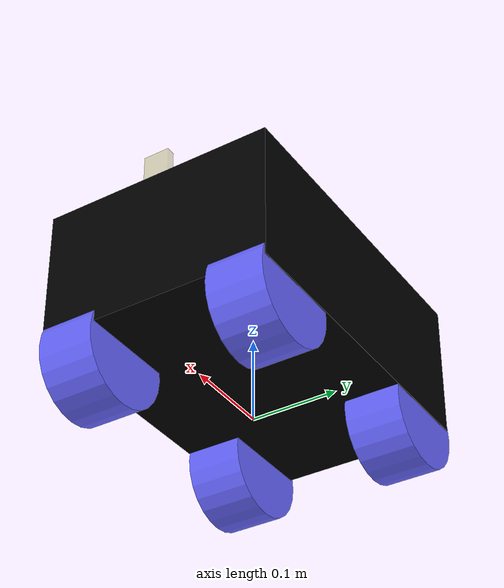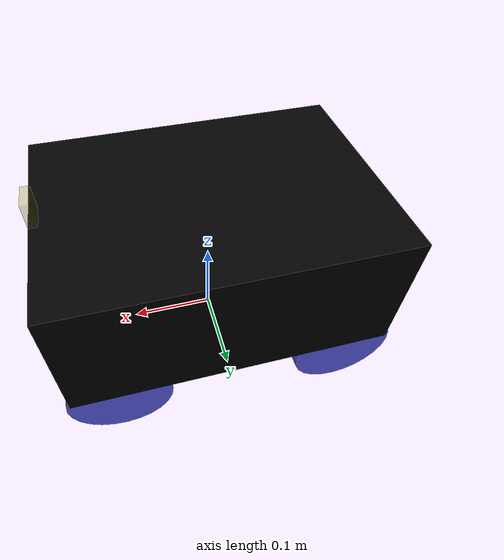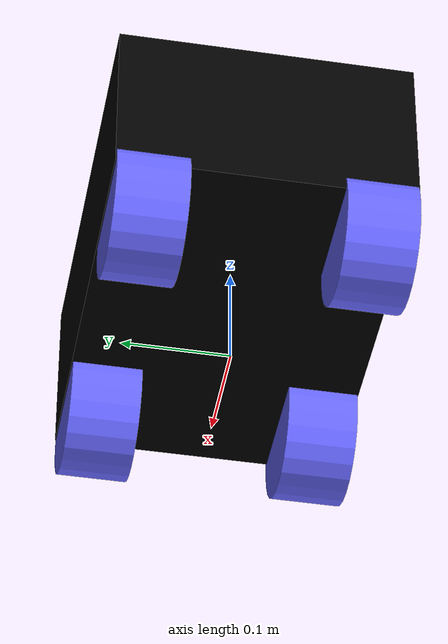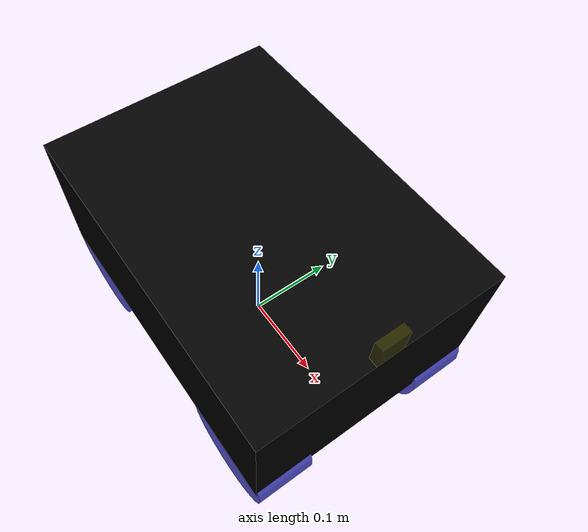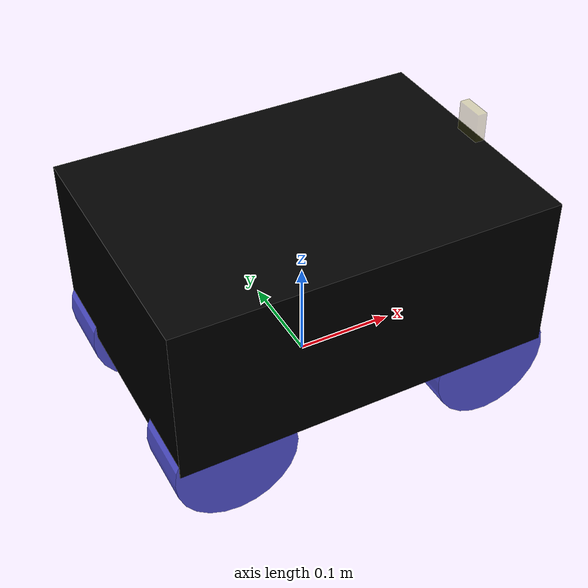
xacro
<?xml version="1.0" encoding="UTF-8" ?>

<robot
  name="stampede"
  xmlns:xacro="http://www.ros.org/wiki/xacro">

  <xacro:include filename="$(find robo_magellan)/urdf/_materials.xacro" />
  <xacro:include filename="$(find robo_magellan)/urdf/_macros.xacro" />
  <xacro:include filename="$(find robo_magellan)/urdf/_rc_parts.xacro" />

  <!-- Parameterized robot dimensions -->
  <xacro:property name="wheel_radius" value="0.060" />
  <xacro:property name="wheel_width" value="0.065" />
  <xacro:property name="wheel_base" value="0.270" />

  <xacro:property name="chassis_width" value="0.270" />
  <xacro:property name="chassis_length" value="0.380" />
  <xacro:property name="chassis_height" value="0.160" />
  <xacro:property name="chassis_clearance" value="0.120" />
  <xacro:property name="chassis_mass" value="1.85" />

  <link name="base_link">
    <visual>
      <origin xyz="0 0 ${chassis_clearance}" rpy="0 0 0" />
      <geometry>
        <box size="${chassis_length} ${chassis_width} ${chassis_height}"/>
      </geometry>
      <material name="Black"/>
    </visual>
    <collision>
      <geometry>
        <box size="${chassis_length} ${chassis_width} ${chassis_height}"/>
      </geometry>
    </collision>
    <xacro:default_inertial mass="${chassis_mass}"/>
  </link>

  <xacro:wheel prefix="left"  suffix="front" reflect="1" mirror="1"/>
  <xacro:wheel prefix="right" suffix="front" reflect="-1" mirror="1"/>
  <xacro:wheel prefix="left"  suffix="rear"  reflect="1" mirror="-1"/>
  <xacro:wheel prefix="right" suffix="rear"  reflect="-1" mirror="-1"/>

  <link name="camera_link">
    <visual>
      <origin xyz="-0.005 0 0" />
      <geometry>
        <box size="0.01 0.03 0.03" />
      </geometry>
      <material name="Yellow"/>
    </visual>
  </link>

  <joint name="base_to_camera" type="fixed">
    <parent link="base_link" />
    <child link="camera_link" />
    <origin xyz="${chassis_length/2} 0 ${chassis_clearance+chassis_height/2+0.015}" />
  </joint>

</robot>

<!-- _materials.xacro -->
<robot
  xmlns:xacro="http://www.ros.org/wiki/xacro"
  >
  <material name="LightBlue">
    <color rgba="0.4 0.4 1.0 1.0" />
  </material>
  <material name="White">
    <color rgba="1.0 1.0 1.0 1.0" />
  </material>
  <material name="Yellow">
    <color rgba="0.5 0.5 0.0 0.3" />
  </material>
  <material name="Gray">
    <color rgba="0.5 0.5 0.5 0.3" />
  </material>
  <material name="Black">
    <color rgba="0.0 0.0 0.0 1.0" />
  </material>
</robot>

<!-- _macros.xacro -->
<robot
  xmlns:xacro="http://www.ros.org/wiki/xacro"
  >
  <xacro:macro name="default_inertial" params="mass">
    <inertial>
      <mass value="${mass}" />
      <inertia ixx="1.0" ixy="0.0" ixz="0.0" iyy="1.0" iyz="0.0" izz="1.0" />
    </inertial>
  </xacro:macro>
</robot>

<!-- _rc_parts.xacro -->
<robot
  xmlns:xacro="http://www.ros.org/wiki/xacro"
  >
  <!--
    Wheel definition.
    Parameters:
    prefix suffix reflect mirror
    Properties:
    wheel_width
    wheel_radius
   -->
  <xacro:macro name="wheel" params="prefix suffix reflect mirror">
    <link name="${prefix}_${suffix}_wheel_link">
      <visual>
        <origin xyz="0 0 0" rpy="0 ${pi/2} 0" />
        <geometry>
          <cylinder length="${wheel_width}" radius="${wheel_radius}" />
          <!-- mesh filename="package://robo_magellan/urdf/some.stl"/ -->
        </geometry>
        <material name="LightBlue"/>
      </visual>
      <collision>
        <geometry>
          <cylinder length="${wheel_width}" radius="${wheel_radius}" />
        </geometry>
      </collision>
    </link>
    <joint name="base_to_${prefix}_${suffix}_wheel" type="fixed">
      <parent link="base_link" />
      <child link="${prefix}_${suffix}_wheel_link" />
      <origin xyz="${wheel_base/2*mirror}  ${0.1015*reflect} 0.030" rpy="0 0 ${(pi/2)*reflect}" />
    </joint>
  </xacro:macro>

</robot>
